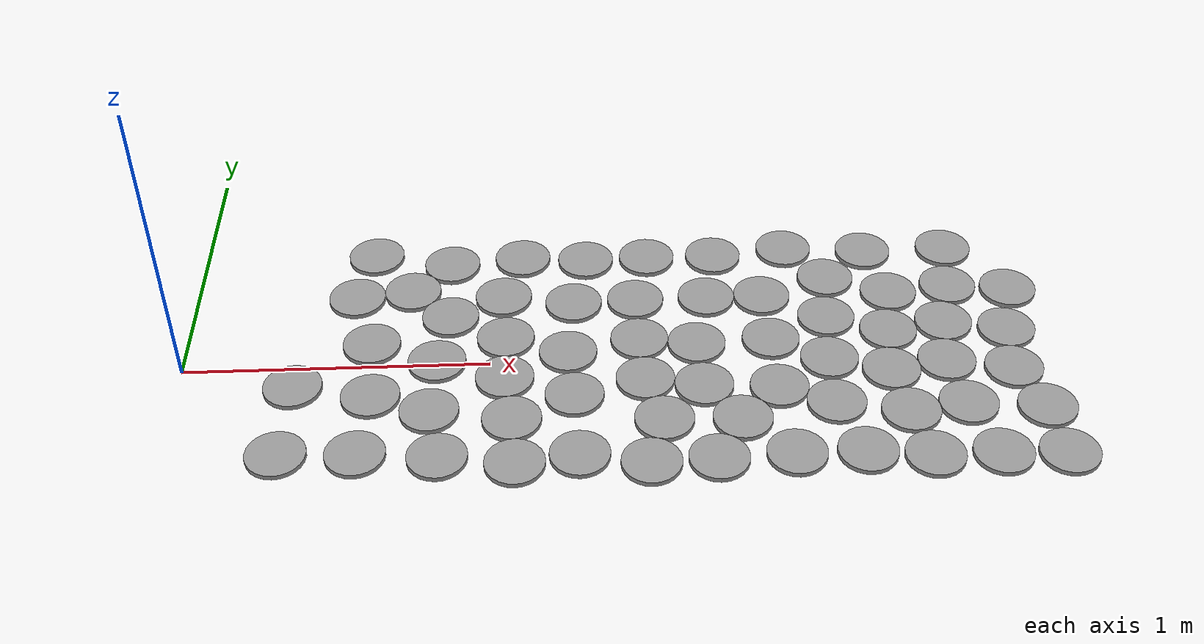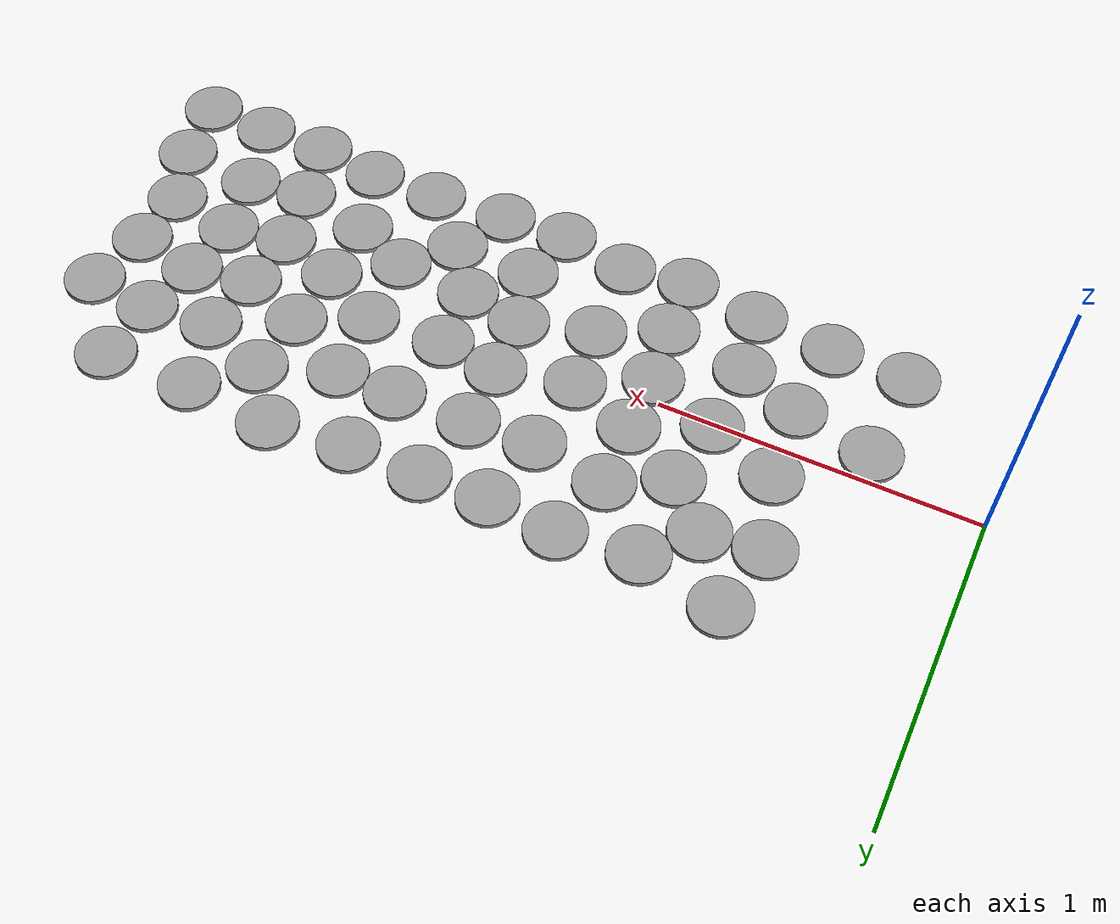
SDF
<sdf version="1.6">
 <world name="default">
  <model name="unit_cylinder_clone_clone_123">
   <pose>0.369188 -0.09185 0.008108 0 -0 0</pose>
   <link name="link">
    <inertial>
     <mass>1</mass>
     <inertia><ixx>0.145833</ixx><ixy>0</ixy><ixz>0</ixz><iyy>0.145833</iyy><iyz>0</iyz><izz>0.125</izz></inertia>
    </inertial>
    <collision name="collision">
     <geometry><cylinder><radius>0.0950718</radius><length>0.0162339</length></cylinder></geometry>
    </collision>
    <visual name="visual">
     <geometry><cylinder><radius>0.0950718</radius><length>0.0162339</length></cylinder></geometry>
     <material>
      <script><name>Gazebo/Grey</name><uri>file://media/materials/scripts/gazebo.material</uri></script>
     </material>
    </visual>
   </link>
  </model>
  <model name="unit_cylinder_clone_clone_124">
   <pose>0.351408 -0.391127 0.008111 0 -0 0</pose>
   <link name="link">
    <inertial>
     <mass>1</mass>
     <inertia><ixx>0.145833</ixx><ixy>0</ixy><ixz>0</ixz><iyy>0.145833</iyy><iyz>0</iyz><izz>0.125</izz></inertia>
    </inertial>
    <collision name="collision">
     <geometry><cylinder><radius>0.0950718</radius><length>0.0162339</length></cylinder></geometry>
    </collision>
    <visual name="visual">
     <geometry><cylinder><radius>0.0950718</radius><length>0.0162339</length></cylinder></geometry>
     <material>
      <script><name>Gazebo/Grey</name><uri>file://media/materials/scripts/gazebo.material</uri></script>
     </material>
    </visual>
   </link>
  </model>
  <model name="unit_cylinder_clone_clone_125">
   <pose>0.594038 -0.397589 0.008111 0 -0 0</pose>
   <link name="link">
    <inertial>
     <mass>1</mass>
     <inertia><ixx>0.145833</ixx><ixy>0</ixy><ixz>0</ixz><iyy>0.145833</iyy><iyz>0</iyz><izz>0.125</izz></inertia>
    </inertial>
    <collision name="collision">
     <geometry><cylinder><radius>0.0950718</radius><length>0.0162339</length></cylinder></geometry>
    </collision>
    <visual name="visual">
     <geometry><cylinder><radius>0.0950718</radius><length>0.0162339</length></cylinder></geometry>
     <material>
      <script><name>Gazebo/Grey</name><uri>file://media/materials/scripts/gazebo.material</uri></script>
     </material>
    </visual>
   </link>
  </model>
  <model name="unit_cylinder_clone_clone_126">
   <pose>0.621231 -0.144033 0.008107 0 -0 0</pose>
   <link name="link">
    <inertial>
     <mass>1</mass>
     <inertia><ixx>0.145833</ixx><ixy>0</ixy><ixz>0</ixz><iyy>0.145833</iyy><iyz>0</iyz><izz>0.125</izz></inertia>
    </inertial>
    <collision name="collision">
     <geometry><cylinder><radius>0.0950718</radius><length>0.0162339</length></cylinder></geometry>
    </collision>
    <visual name="visual">
     <geometry><cylinder><radius>0.0950718</radius><length>0.0162339</length></cylinder></geometry>
     <material>
      <script><name>Gazebo/Grey</name><uri>file://media/materials/scripts/gazebo.material</uri></script>
     </material>
    </visual>
   </link>
  </model>
  <model name="unit_cylinder_clone_clone_127">
   <pose>0.607874 0.101254 0.008111 0 -0 0</pose>
   <link name="link">
    <inertial>
     <mass>1</mass>
     <inertia><ixx>0.145833</ixx><ixy>0</ixy><ixz>0</ixz><iyy>0.145833</iyy><iyz>0</iyz><izz>0.125</izz></inertia>
    </inertial>
    <collision name="collision">
     <geometry><cylinder><radius>0.0950718</radius><length>0.0162339</length></cylinder></geometry>
    </collision>
    <visual name="visual">
     <geometry><cylinder><radius>0.0950718</radius><length>0.0162339</length></cylinder></geometry>
     <material>
      <script><name>Gazebo/Grey</name><uri>file://media/materials/scripts/gazebo.material</uri></script>
     </material>
    </visual>
   </link>
  </model>
  <model name="unit_cylinder_clone_clone_128">
   <pose>0.540658 0.337848 0.008116 0 -0 0.003136</pose>
   <link name="link">
    <inertial>
     <mass>1</mass>
     <inertia><ixx>0.145833</ixx><ixy>0</ixy><ixz>0</ixz><iyy>0.145833</iyy><iyz>0</iyz><izz>0.125</izz></inertia>
    </inertial>
    <collision name="collision">
     <geometry><cylinder><radius>0.0950718</radius><length>0.0162339</length></cylinder></geometry>
    </collision>
    <visual name="visual">
     <geometry><cylinder><radius>0.0950718</radius><length>0.0162339</length></cylinder></geometry>
     <material>
      <script><name>Gazebo/Grey</name><uri>file://media/materials/scripts/gazebo.material</uri></script>
     </material>
    </visual>
   </link>
  </model>
  <model name="unit_cylinder_clone_clone_129">
   <pose>0.590064 0.560114 0.008115 0 -0 0</pose>
   <link name="link">
    <inertial>
     <mass>1</mass>
     <inertia><ixx>0.145833</ixx><ixy>0</ixy><ixz>0</ixz><iyy>0.145833</iyy><iyz>0</iyz><izz>0.125</izz></inertia>
    </inertial>
    <collision name="collision">
     <geometry><cylinder><radius>0.0950718</radius><length>0.0162339</length></cylinder></geometry>
    </collision>
    <visual name="visual">
     <geometry><cylinder><radius>0.0950718</radius><length>0.0162339</length></cylinder></geometry>
     <material>
      <script><name>Gazebo/Grey</name><uri>file://media/materials/scripts/gazebo.material</uri></script>
     </material>
    </visual>
   </link>
  </model>
  <model name="unit_cylinder_clone_clone_130">
   <pose>0.857851 0.502889 0.008112 -5e-06 0 -0.000519</pose>
   <link name="link">
    <inertial>
     <mass>1</mass>
     <inertia><ixx>0.145833</ixx><ixy>0</ixy><ixz>0</ixz><iyy>0.145833</iyy><iyz>0</iyz><izz>0.125</izz></inertia>
    </inertial>
    <collision name="collision">
     <geometry><cylinder><radius>0.0950718</radius><length>0.0162339</length></cylinder></geometry>
    </collision>
    <visual name="visual">
     <geometry><cylinder><radius>0.0950718</radius><length>0.0162339</length></cylinder></geometry>
     <material>
      <script><name>Gazebo/Grey</name><uri>file://media/materials/scripts/gazebo.material</uri></script>
     </material>
    </visual>
   </link>
  </model>
  <model name="unit_cylinder_clone_clone_131">
   <pose>1.10308 0.528807 0.008108 0 -0 0</pose>
   <link name="link">
    <inertial>
     <mass>1</mass>
     <inertia><ixx>0.145833</ixx><ixy>0</ixy><ixz>0</ixz><iyy>0.145833</iyy><iyz>0</iyz><izz>0.125</izz></inertia>
    </inertial>
    <collision name="collision">
     <geometry><cylinder><radius>0.0950718</radius><length>0.0162339</length></cylinder></geometry>
    </collision>
    <visual name="visual">
     <geometry><cylinder><radius>0.0950718</radius><length>0.0162339</length></cylinder></geometry>
     <material>
      <script><name>Gazebo/Grey</name><uri>file://media/materials/scripts/gazebo.material</uri></script>
     </material>
    </visual>
   </link>
  </model>
  <model name="unit_cylinder_clone_clone_132">
   <pose>1.32275 0.511495 0.008108 0 -0 0</pose>
   <link name="link">
    <inertial>
     <mass>1</mass>
     <inertia><ixx>0.145833</ixx><ixy>0</ixy><ixz>0</ixz><iyy>0.145833</iyy><iyz>0</iyz><izz>0.125</izz></inertia>
    </inertial>
    <collision name="collision">
     <geometry><cylinder><radius>0.0950718</radius><length>0.0162339</length></cylinder></geometry>
    </collision>
    <visual name="visual">
     <geometry><cylinder><radius>0.0950718</radius><length>0.0162339</length></cylinder></geometry>
     <material>
      <script><name>Gazebo/Grey</name><uri>file://media/materials/scripts/gazebo.material</uri></script>
     </material>
    </visual>
   </link>
  </model>
  <model name="unit_cylinder_clone_clone_133">
   <pose>1.53605 0.518092 0.008108 0 -0 0</pose>
   <link name="link">
    <inertial>
     <mass>1</mass>
     <inertia><ixx>0.145833</ixx><ixy>0</ixy><ixz>0</ixz><iyy>0.145833</iyy><iyz>0</iyz><izz>0.125</izz></inertia>
    </inertial>
    <collision name="collision">
     <geometry><cylinder><radius>0.0950718</radius><length>0.0162339</length></cylinder></geometry>
    </collision>
    <visual name="visual">
     <geometry><cylinder><radius>0.0950718</radius><length>0.0162339</length></cylinder></geometry>
     <material>
      <script><name>Gazebo/Grey</name><uri>file://media/materials/scripts/gazebo.material</uri></script>
     </material>
    </visual>
   </link>
  </model>
  <model name="unit_cylinder_clone_clone_134">
   <pose>1.76945 0.517124 0.008111 0 -0 0</pose>
   <link name="link">
    <inertial>
     <mass>1</mass>
     <inertia><ixx>0.145833</ixx><ixy>0</ixy><ixz>0</ixz><iyy>0.145833</iyy><iyz>0</iyz><izz>0.125</izz></inertia>
    </inertial>
    <collision name="collision">
     <geometry><cylinder><radius>0.0950718</radius><length>0.0162339</length></cylinder></geometry>
    </collision>
    <visual name="visual">
     <geometry><cylinder><radius>0.0950718</radius><length>0.0162339</length></cylinder></geometry>
     <material>
      <script><name>Gazebo/Grey</name><uri>file://media/materials/scripts/gazebo.material</uri></script>
     </material>
    </visual>
   </link>
  </model>
  <model name="unit_cylinder_clone_clone_135">
   <pose>2.02142 0.54671 0.008108 0 -0 0</pose>
   <link name="link">
    <inertial>
     <mass>1</mass>
     <inertia><ixx>0.145833</ixx><ixy>0</ixy><ixz>0</ixz><iyy>0.145833</iyy><iyz>0</iyz><izz>0.125</izz></inertia>
    </inertial>
    <collision name="collision">
     <geometry><cylinder><radius>0.0950718</radius><length>0.0162339</length></cylinder></geometry>
    </collision>
    <visual name="visual">
     <geometry><cylinder><radius>0.0950718</radius><length>0.0162339</length></cylinder></geometry>
     <material>
      <script><name>Gazebo/Grey</name><uri>file://media/materials/scripts/gazebo.material</uri></script>
     </material>
    </visual>
   </link>
  </model>
  <model name="unit_cylinder_clone_clone_136">
   <pose>2.30067 0.523798 0.008111 0 -0 0</pose>
   <link name="link">
    <inertial>
     <mass>1</mass>
     <inertia><ixx>0.145833</ixx><ixy>0</ixy><ixz>0</ixz><iyy>0.145833</iyy><iyz>0</iyz><izz>0.125</izz></inertia>
    </inertial>
    <collision name="collision">
     <geometry><cylinder><radius>0.0950718</radius><length>0.0162339</length></cylinder></geometry>
    </collision>
    <visual name="visual">
     <geometry><cylinder><radius>0.0950718</radius><length>0.0162339</length></cylinder></geometry>
     <material>
      <script><name>Gazebo/Grey</name><uri>file://media/materials/scripts/gazebo.material</uri></script>
     </material>
    </visual>
   </link>
  </model>
  <model name="unit_cylinder_clone_clone_137">
   <pose>2.5873 0.528408 0.008108 0 -0 0</pose>
   <link name="link">
    <inertial>
     <mass>1</mass>
     <inertia><ixx>0.145833</ixx><ixy>0</ixy><ixz>0</ixz><iyy>0.145833</iyy><iyz>0</iyz><izz>0.125</izz></inertia>
    </inertial>
    <collision name="collision">
     <geometry><cylinder><radius>0.0950718</radius><length>0.0162339</length></cylinder></geometry>
    </collision>
    <visual name="visual">
     <geometry><cylinder><radius>0.0950718</radius><length>0.0162339</length></cylinder></geometry>
     <material>
      <script><name>Gazebo/Grey</name><uri>file://media/materials/scripts/gazebo.material</uri></script>
     </material>
    </visual>
   </link>
  </model>
  <model name="unit_cylinder_clone_clone_161">
   <pose>2.78554 -0.475572 0.008111 0 -0 0</pose>
   <link name="link">
    <inertial>
     <mass>1</mass>
     <inertia><ixx>0.145833</ixx><ixy>0</ixy><ixz>0</ixz><iyy>0.145833</iyy><iyz>0</iyz><izz>0.125</izz></inertia>
    </inertial>
    <collision name="collision">
     <geometry><cylinder><radius>0.0950718</radius><length>0.0162339</length></cylinder></geometry>
    </collision>
    <visual name="visual">
     <geometry><cylinder><radius>0.0950718</radius><length>0.0162339</length></cylinder></geometry>
     <material>
      <script><name>Gazebo/Grey</name><uri>file://media/materials/scripts/gazebo.material</uri></script>
     </material>
    </visual>
   </link>
  </model>
  <model name="unit_cylinder_clone_clone_162">
   <pose>2.58264 -0.467705 0.008108 0 -0 0</pose>
   <link name="link">
    <inertial>
     <mass>1</mass>
     <inertia><ixx>0.145833</ixx><ixy>0</ixy><ixz>0</ixz><iyy>0.145833</iyy><iyz>0</iyz><izz>0.125</izz></inertia>
    </inertial>
    <collision name="collision">
     <geometry><cylinder><radius>0.0950718</radius><length>0.0162339</length></cylinder></geometry>
    </collision>
    <visual name="visual">
     <geometry><cylinder><radius>0.0950718</radius><length>0.0162339</length></cylinder></geometry>
     <material>
      <script><name>Gazebo/Grey</name><uri>file://media/materials/scripts/gazebo.material</uri></script>
     </material>
    </visual>
   </link>
  </model>
  <model name="unit_cylinder_clone_clone_163">
   <pose>2.37176 -0.46862 0.008111 0 -0 0</pose>
   <link name="link">
    <inertial>
     <mass>1</mass>
     <inertia><ixx>0.145833</ixx><ixy>0</ixy><ixz>0</ixz><iyy>0.145833</iyy><iyz>0</iyz><izz>0.125</izz></inertia>
    </inertial>
    <collision name="collision">
     <geometry><cylinder><radius>0.0950718</radius><length>0.0162339</length></cylinder></geometry>
    </collision>
    <visual name="visual">
     <geometry><cylinder><radius>0.0950718</radius><length>0.0162339</length></cylinder></geometry>
     <material>
      <script><name>Gazebo/Grey</name><uri>file://media/materials/scripts/gazebo.material</uri></script>
     </material>
    </visual>
   </link>
  </model>
  <model name="unit_cylinder_clone_clone_164">
   <pose>2.16826 -0.44393 0.008108 0 -0 0</pose>
   <link name="link">
    <inertial>
     <mass>1</mass>
     <inertia><ixx>0.145833</ixx><ixy>0</ixy><ixz>0</ixz><iyy>0.145833</iyy><iyz>0</iyz><izz>0.125</izz></inertia>
    </inertial>
    <collision name="collision">
     <geometry><cylinder><radius>0.0950718</radius><length>0.0162339</length></cylinder></geometry>
    </collision>
    <visual name="visual">
     <geometry><cylinder><radius>0.0950718</radius><length>0.0162339</length></cylinder></geometry>
     <material>
      <script><name>Gazebo/Grey</name><uri>file://media/materials/scripts/gazebo.material</uri></script>
     </material>
    </visual>
   </link>
  </model>
  <model name="unit_cylinder_clone_clone_165">
   <pose>1.94921 -0.445227 0.008108 0 -0 0</pose>
   <link name="link">
    <inertial>
     <mass>1</mass>
     <inertia><ixx>0.145833</ixx><ixy>0</ixy><ixz>0</ixz><iyy>0.145833</iyy><iyz>0</iyz><izz>0.125</izz></inertia>
    </inertial>
    <collision name="collision">
     <geometry><cylinder><radius>0.0950718</radius><length>0.0162339</length></cylinder></geometry>
    </collision>
    <visual name="visual">
     <geometry><cylinder><radius>0.0950718</radius><length>0.0162339</length></cylinder></geometry>
     <material>
      <script><name>Gazebo/Grey</name><uri>file://media/materials/scripts/gazebo.material</uri></script>
     </material>
    </visual>
   </link>
  </model>
  <model name="unit_cylinder_clone_clone_166">
   <pose>1.70917 -0.456481 0.008116 0 0 -0.001132</pose>
   <link name="link">
    <inertial>
     <mass>1</mass>
     <inertia><ixx>0.145833</ixx><ixy>0</ixy><ixz>0</ixz><iyy>0.145833</iyy><iyz>0</iyz><izz>0.125</izz></inertia>
    </inertial>
    <collision name="collision">
     <geometry><cylinder><radius>0.0950718</radius><length>0.0162339</length></cylinder></geometry>
    </collision>
    <visual name="visual">
     <geometry><cylinder><radius>0.0950718</radius><length>0.0162339</length></cylinder></geometry>
     <material>
      <script><name>Gazebo/Grey</name><uri>file://media/materials/scripts/gazebo.material</uri></script>
     </material>
    </visual>
   </link>
  </model>
  <model name="unit_cylinder_clone_clone_167">
   <pose>1.50136 -0.465139 0.008107 0 0 -0.001371</pose>
   <link name="link">
    <inertial>
     <mass>1</mass>
     <inertia><ixx>0.145833</ixx><ixy>0</ixy><ixz>0</ixz><iyy>0.145833</iyy><iyz>0</iyz><izz>0.125</izz></inertia>
    </inertial>
    <collision name="collision">
     <geometry><cylinder><radius>0.0950718</radius><length>0.0162339</length></cylinder></geometry>
    </collision>
    <visual name="visual">
     <geometry><cylinder><radius>0.0950718</radius><length>0.0162339</length></cylinder></geometry>
     <material>
      <script><name>Gazebo/Grey</name><uri>file://media/materials/scripts/gazebo.material</uri></script>
     </material>
    </visual>
   </link>
  </model>
  <model name="unit_cylinder_clone_clone_168">
   <pose>1.28313 -0.424276 0.008111 0 -0 0</pose>
   <link name="link">
    <inertial>
     <mass>1</mass>
     <inertia><ixx>0.145833</ixx><ixy>0</ixy><ixz>0</ixz><iyy>0.145833</iyy><iyz>0</iyz><izz>0.125</izz></inertia>
    </inertial>
    <collision name="collision">
     <geometry><cylinder><radius>0.0950718</radius><length>0.0162339</length></cylinder></geometry>
    </collision>
    <visual name="visual">
     <geometry><cylinder><radius>0.0950718</radius><length>0.0162339</length></cylinder></geometry>
     <material>
      <script><name>Gazebo/Grey</name><uri>file://media/materials/scripts/gazebo.material</uri></script>
     </material>
    </visual>
   </link>
  </model>
  <model name="unit_cylinder_clone_clone_169">
   <pose>1.08345 -0.453173 0.008117 0 0 -0.000221</pose>
   <link name="link">
    <inertial>
     <mass>1</mass>
     <inertia><ixx>0.145833</ixx><ixy>0</ixy><ixz>0</ixz><iyy>0.145833</iyy><iyz>0</iyz><izz>0.125</izz></inertia>
    </inertial>
    <collision name="collision">
     <geometry><cylinder><radius>0.0950718</radius><length>0.0162339</length></cylinder></geometry>
    </collision>
    <visual name="visual">
     <geometry><cylinder><radius>0.0950718</radius><length>0.0162339</length></cylinder></geometry>
     <material>
      <script><name>Gazebo/Grey</name><uri>file://media/materials/scripts/gazebo.material</uri></script>
     </material>
    </visual>
   </link>
  </model>
  <model name="unit_cylinder_clone_clone_170">
   <pose>0.845585 -0.418486 0.008116 0 -0 0</pose>
   <link name="link">
    <inertial>
     <mass>1</mass>
     <inertia><ixx>0.145833</ixx><ixy>0</ixy><ixz>0</ixz><iyy>0.145833</iyy><iyz>0</iyz><izz>0.125</izz></inertia>
    </inertial>
    <collision name="collision">
     <geometry><cylinder><radius>0.0950718</radius><length>0.0162339</length></cylinder></geometry>
    </collision>
    <visual name="visual">
     <geometry><cylinder><radius>0.0950718</radius><length>0.0162339</length></cylinder></geometry>
     <material>
      <script><name>Gazebo/Grey</name><uri>file://media/materials/scripts/gazebo.material</uri></script>
     </material>
    </visual>
   </link>
  </model>
  <model name="unit_cylinder_clone_clone_171">
   <pose>0.81133 -0.218066 0.008116 0 -0 0</pose>
   <link name="link">
    <inertial>
     <mass>1</mass>
     <inertia><ixx>0.145833</ixx><ixy>0</ixy><ixz>0</ixz><iyy>0.145833</iyy><iyz>0</iyz><izz>0.125</izz></inertia>
    </inertial>
    <collision name="collision">
     <geometry><cylinder><radius>0.0950718</radius><length>0.0162339</length></cylinder></geometry>
    </collision>
    <visual name="visual">
     <geometry><cylinder><radius>0.0950718</radius><length>0.0162339</length></cylinder></geometry>
     <material>
      <script><name>Gazebo/Grey</name><uri>file://media/materials/scripts/gazebo.material</uri></script>
     </material>
    </visual>
   </link>
  </model>
  <model name="unit_cylinder_clone_clone_172">
   <pose>0.826242 0.00979 0.008116 0 -0 0</pose>
   <link name="link">
    <inertial>
     <mass>1</mass>
     <inertia><ixx>0.145833</ixx><ixy>0</ixy><ixz>0</ixz><iyy>0.145833</iyy><iyz>0</iyz><izz>0.125</izz></inertia>
    </inertial>
    <collision name="collision">
     <geometry><cylinder><radius>0.0950718</radius><length>0.0162339</length></cylinder></geometry>
    </collision>
    <visual name="visual">
     <geometry><cylinder><radius>0.0950718</radius><length>0.0162339</length></cylinder></geometry>
     <material>
      <script><name>Gazebo/Grey</name><uri>file://media/materials/scripts/gazebo.material</uri></script>
     </material>
    </visual>
   </link>
  </model>
  <model name="unit_cylinder_clone_clone_173">
   <pose>0.861834 0.226743 0.008117 0 0 -0.004425</pose>
   <link name="link">
    <inertial>
     <mass>1</mass>
     <inertia><ixx>0.145833</ixx><ixy>0</ixy><ixz>0</ixz><iyy>0.145833</iyy><iyz>0</iyz><izz>0.125</izz></inertia>
    </inertial>
    <collision name="collision">
     <geometry><cylinder><radius>0.0950718</radius><length>0.0162339</length></cylinder></geometry>
    </collision>
    <visual name="visual">
     <geometry><cylinder><radius>0.0950718</radius><length>0.0162339</length></cylinder></geometry>
     <material>
      <script><name>Gazebo/Grey</name><uri>file://media/materials/scripts/gazebo.material</uri></script>
     </material>
    </visual>
   </link>
  </model>
  <model name="unit_cylinder_clone_clone_174">
   <pose>1.03906 0.323316 0.008116 0 -0 0</pose>
   <link name="link">
    <inertial>
     <mass>1</mass>
     <inertia><ixx>0.145833</ixx><ixy>0</ixy><ixz>0</ixz><iyy>0.145833</iyy><iyz>0</iyz><izz>0.125</izz></inertia>
    </inertial>
    <collision name="collision">
     <geometry><cylinder><radius>0.0950718</radius><length>0.0162339</length></cylinder></geometry>
    </collision>
    <visual name="visual">
     <geometry><cylinder><radius>0.0950718</radius><length>0.0162339</length></cylinder></geometry>
     <material>
      <script><name>Gazebo/Grey</name><uri>file://media/materials/scripts/gazebo.material</uri></script>
     </material>
    </visual>
   </link>
  </model>
  <model name="unit_cylinder_clone_clone_175">
   <pose>1.04855 0.115366 0.008108 0 0 -9e-06</pose>
   <link name="link">
    <inertial>
     <mass>1</mass>
     <inertia><ixx>0.145833</ixx><ixy>0</ixy><ixz>0</ixz><iyy>0.145833</iyy><iyz>0</iyz><izz>0.125</izz></inertia>
    </inertial>
    <collision name="collision">
     <geometry><cylinder><radius>0.0950718</radius><length>0.0162339</length></cylinder></geometry>
    </collision>
    <visual name="visual">
     <geometry><cylinder><radius>0.0950718</radius><length>0.0162339</length></cylinder></geometry>
     <material>
      <script><name>Gazebo/Grey</name><uri>file://media/materials/scripts/gazebo.material</uri></script>
     </material>
    </visual>
   </link>
  </model>
  <model name="unit_cylinder_clone_clone_176">
   <pose>1.04769 -0.074795 0.008108 0 -0 0.000803</pose>
   <link name="link">
    <inertial>
     <mass>1</mass>
     <inertia><ixx>0.145833</ixx><ixy>0</ixy><ixz>0</ixz><iyy>0.145833</iyy><iyz>0</iyz><izz>0.125</izz></inertia>
    </inertial>
    <collision name="collision">
     <geometry><cylinder><radius>0.0950718</radius><length>0.0162339</length></cylinder></geometry>
    </collision>
    <visual name="visual">
     <geometry><cylinder><radius>0.0950718</radius><length>0.0162339</length></cylinder></geometry>
     <material>
      <script><name>Gazebo/Grey</name><uri>file://media/materials/scripts/gazebo.material</uri></script>
     </material>
    </visual>
   </link>
  </model>
  <model name="unit_cylinder_clone_clone_177">
   <pose>1.27129 -0.162874 0.008108 0 -0 0</pose>
   <link name="link">
    <inertial>
     <mass>1</mass>
     <inertia><ixx>0.145833</ixx><ixy>0</ixy><ixz>0</ixz><iyy>0.145833</iyy><iyz>0</iyz><izz>0.125</izz></inertia>
    </inertial>
    <collision name="collision">
     <geometry><cylinder><radius>0.0950718</radius><length>0.0162339</length></cylinder></geometry>
    </collision>
    <visual name="visual">
     <geometry><cylinder><radius>0.0950718</radius><length>0.0162339</length></cylinder></geometry>
     <material>
      <script><name>Gazebo/Grey</name><uri>file://media/materials/scripts/gazebo.material</uri></script>
     </material>
    </visual>
   </link>
  </model>
  <model name="unit_cylinder_clone_clone_178">
   <pose>1.25379 0.03839 0.008108 0 -0 0</pose>
   <link name="link">
    <inertial>
     <mass>1</mass>
     <inertia><ixx>0.145833</ixx><ixy>0</ixy><ixz>0</ixz><iyy>0.145833</iyy><iyz>0</iyz><izz>0.125</izz></inertia>
    </inertial>
    <collision name="collision">
     <geometry><cylinder><radius>0.0950718</radius><length>0.0162339</length></cylinder></geometry>
    </collision>
    <visual name="visual">
     <geometry><cylinder><radius>0.0950718</radius><length>0.0162339</length></cylinder></geometry>
     <material>
      <script><name>Gazebo/Grey</name><uri>file://media/materials/scripts/gazebo.material</uri></script>
     </material>
    </visual>
   </link>
  </model>
  <model name="unit_cylinder_clone_clone_179">
   <pose>1.27636 0.283558 0.008116 0 -0 0</pose>
   <link name="link">
    <inertial>
     <mass>1</mass>
     <inertia><ixx>0.145833</ixx><ixy>0</ixy><ixz>0</ixz><iyy>0.145833</iyy><iyz>0</iyz><izz>0.125</izz></inertia>
    </inertial>
    <collision name="collision">
     <geometry><cylinder><radius>0.0950718</radius><length>0.0162339</length></cylinder></geometry>
    </collision>
    <visual name="visual">
     <geometry><cylinder><radius>0.0950718</radius><length>0.0162339</length></cylinder></geometry>
     <material>
      <script><name>Gazebo/Grey</name><uri>file://media/materials/scripts/gazebo.material</uri></script>
     </material>
    </visual>
   </link>
  </model>
  <model name="unit_cylinder_clone_clone_180">
   <pose>1.48633 0.293061 0.008108 0 -0 0</pose>
   <link name="link">
    <inertial>
     <mass>1</mass>
     <inertia><ixx>0.145833</ixx><ixy>0</ixy><ixz>0</ixz><iyy>0.145833</iyy><iyz>0</iyz><izz>0.125</izz></inertia>
    </inertial>
    <collision name="collision">
     <geometry><cylinder><radius>0.0950718</radius><length>0.0162339</length></cylinder></geometry>
    </collision>
    <visual name="visual">
     <geometry><cylinder><radius>0.0950718</radius><length>0.0162339</length></cylinder></geometry>
     <material>
      <script><name>Gazebo/Grey</name><uri>file://media/materials/scripts/gazebo.material</uri></script>
     </material>
    </visual>
   </link>
  </model>
  <model name="unit_cylinder_clone_clone_181">
   <pose>1.49035 0.092091 0.008116 0 -0 1.4e-05</pose>
   <link name="link">
    <inertial>
     <mass>1</mass>
     <inertia><ixx>0.145833</ixx><ixy>0</ixy><ixz>0</ixz><iyy>0.145833</iyy><iyz>0</iyz><izz>0.125</izz></inertia>
    </inertial>
    <collision name="collision">
     <geometry><cylinder><radius>0.0950718</radius><length>0.0162339</length></cylinder></geometry>
    </collision>
    <visual name="visual">
     <geometry><cylinder><radius>0.0950718</radius><length>0.0162339</length></cylinder></geometry>
     <material>
      <script><name>Gazebo/Grey</name><uri>file://media/materials/scripts/gazebo.material</uri></script>
     </material>
    </visual>
   </link>
  </model>
  <model name="unit_cylinder_clone_clone_182">
   <pose>1.50081 -0.098441 0.008112 5e-06 -0 0.007148</pose>
   <link name="link">
    <inertial>
     <mass>1</mass>
     <inertia><ixx>0.145833</ixx><ixy>0</ixy><ixz>0</ixz><iyy>0.145833</iyy><iyz>0</iyz><izz>0.125</izz></inertia>
    </inertial>
    <collision name="collision">
     <geometry><cylinder><radius>0.0950718</radius><length>0.0162339</length></cylinder></geometry>
    </collision>
    <visual name="visual">
     <geometry><cylinder><radius>0.0950718</radius><length>0.0162339</length></cylinder></geometry>
     <material>
      <script><name>Gazebo/Grey</name><uri>file://media/materials/scripts/gazebo.material</uri></script>
     </material>
    </visual>
   </link>
  </model>
  <model name="unit_cylinder_clone_clone_183">
   <pose>1.68864 -0.132849 0.008108 0 -0 0.000348</pose>
   <link name="link">
    <inertial>
     <mass>1</mass>
     <inertia><ixx>0.145833</ixx><ixy>0</ixy><ixz>0</ixz><iyy>0.145833</iyy><iyz>0</iyz><izz>0.125</izz></inertia>
    </inertial>
    <collision name="collision">
     <geometry><cylinder><radius>0.0950718</radius><length>0.0162339</length></cylinder></geometry>
    </collision>
    <visual name="visual">
     <geometry><cylinder><radius>0.0950718</radius><length>0.0162339</length></cylinder></geometry>
     <material>
      <script><name>Gazebo/Grey</name><uri>file://media/materials/scripts/gazebo.material</uri></script>
     </material>
    </visual>
   </link>
  </model>
  <model name="unit_cylinder_clone_clone_184">
   <pose>1.67855 0.064912 0.008117 0 -0 2.7e-05</pose>
   <link name="link">
    <inertial>
     <mass>1</mass>
     <inertia><ixx>0.145833</ixx><ixy>0</ixy><ixz>0</ixz><iyy>0.145833</iyy><iyz>0</iyz><izz>0.125</izz></inertia>
    </inertial>
    <collision name="collision">
     <geometry><cylinder><radius>0.0950718</radius><length>0.0162339</length></cylinder></geometry>
    </collision>
    <visual name="visual">
     <geometry><cylinder><radius>0.0950718</radius><length>0.0162339</length></cylinder></geometry>
     <material>
      <script><name>Gazebo/Grey</name><uri>file://media/materials/scripts/gazebo.material</uri></script>
     </material>
    </visual>
   </link>
  </model>
  <model name="unit_cylinder_clone_clone_185">
   <pose>1.72801 0.296127 0.008116 0 -0 2.5e-05</pose>
   <link name="link">
    <inertial>
     <mass>1</mass>
     <inertia><ixx>0.145833</ixx><ixy>0</ixy><ixz>0</ixz><iyy>0.145833</iyy><iyz>0</iyz><izz>0.125</izz></inertia>
    </inertial>
    <collision name="collision">
     <geometry><cylinder><radius>0.0950718</radius><length>0.0162339</length></cylinder></geometry>
    </collision>
    <visual name="visual">
     <geometry><cylinder><radius>0.0950718</radius><length>0.0162339</length></cylinder></geometry>
     <material>
      <script><name>Gazebo/Grey</name><uri>file://media/materials/scripts/gazebo.material</uri></script>
     </material>
    </visual>
   </link>
  </model>
  <model name="unit_cylinder_clone_clone_186">
   <pose>1.91816 0.295163 0.008108 0 -0 3.7e-05</pose>
   <link name="link">
    <inertial>
     <mass>1</mass>
     <inertia><ixx>0.145833</ixx><ixy>0</ixy><ixz>0</ixz><iyy>0.145833</iyy><iyz>0</iyz><izz>0.125</izz></inertia>
    </inertial>
    <collision name="collision">
     <geometry><cylinder><radius>0.0950718</radius><length>0.0162339</length></cylinder></geometry>
    </collision>
    <visual name="visual">
     <geometry><cylinder><radius>0.0950718</radius><length>0.0162339</length></cylinder></geometry>
     <material>
      <script><name>Gazebo/Grey</name><uri>file://media/materials/scripts/gazebo.material</uri></script>
     </material>
    </visual>
   </link>
  </model>
  <model name="unit_cylinder_clone_clone_187">
   <pose>1.9256 0.077038 0.008116 0 -0 0</pose>
   <link name="link">
    <inertial>
     <mass>1</mass>
     <inertia><ixx>0.145833</ixx><ixy>0</ixy><ixz>0</ixz><iyy>0.145833</iyy><iyz>0</iyz><izz>0.125</izz></inertia>
    </inertial>
    <collision name="collision">
     <geometry><cylinder><radius>0.0950718</radius><length>0.0162339</length></cylinder></geometry>
    </collision>
    <visual name="visual">
     <geometry><cylinder><radius>0.0950718</radius><length>0.0162339</length></cylinder></geometry>
     <material>
      <script><name>Gazebo/Grey</name><uri>file://media/materials/scripts/gazebo.material</uri></script>
     </material>
    </visual>
   </link>
  </model>
  <model name="unit_cylinder_clone_clone_188">
   <pose>1.92869 -0.150043 0.008107 0 -0 0.001587</pose>
   <link name="link">
    <inertial>
     <mass>1</mass>
     <inertia><ixx>0.145833</ixx><ixy>0</ixy><ixz>0</ixz><iyy>0.145833</iyy><iyz>0</iyz><izz>0.125</izz></inertia>
    </inertial>
    <collision name="collision">
     <geometry><cylinder><radius>0.0950718</radius><length>0.0162339</length></cylinder></geometry>
    </collision>
    <visual name="visual">
     <geometry><cylinder><radius>0.0950718</radius><length>0.0162339</length></cylinder></geometry>
     <material>
      <script><name>Gazebo/Grey</name><uri>file://media/materials/scripts/gazebo.material</uri></script>
     </material>
    </visual>
   </link>
  </model>
  <model name="unit_cylinder_clone_clone_189">
   <pose>2.10217 -0.227905 0.008115 0 0 -0.000166</pose>
   <link name="link">
    <inertial>
     <mass>1</mass>
     <inertia><ixx>0.145833</ixx><ixy>0</ixy><ixz>0</ixz><iyy>0.145833</iyy><iyz>0</iyz><izz>0.125</izz></inertia>
    </inertial>
    <collision name="collision">
     <geometry><cylinder><radius>0.0950718</radius><length>0.0162339</length></cylinder></geometry>
    </collision>
    <visual name="visual">
     <geometry><cylinder><radius>0.0950718</radius><length>0.0162339</length></cylinder></geometry>
     <material>
      <script><name>Gazebo/Grey</name><uri>file://media/materials/scripts/gazebo.material</uri></script>
     </material>
    </visual>
   </link>
  </model>
  <model name="unit_cylinder_clone_clone_190">
   <pose>2.10716 -0.024344 0.008108 0 -0 0</pose>
   <link name="link">
    <inertial>
     <mass>1</mass>
     <inertia><ixx>0.145833</ixx><ixy>0</ixy><ixz>0</ixz><iyy>0.145833</iyy><iyz>0</iyz><izz>0.125</izz></inertia>
    </inertial>
    <collision name="collision">
     <geometry><cylinder><radius>0.0950718</radius><length>0.0162339</length></cylinder></geometry>
    </collision>
    <visual name="visual">
     <geometry><cylinder><radius>0.0950718</radius><length>0.0162339</length></cylinder></geometry>
     <material>
      <script><name>Gazebo/Grey</name><uri>file://media/materials/scripts/gazebo.material</uri></script>
     </material>
    </visual>
   </link>
  </model>
  <model name="unit_cylinder_clone_clone_191">
   <pose>2.12327 0.178633 0.008108 0 -0 0</pose>
   <link name="link">
    <inertial>
     <mass>1</mass>
     <inertia><ixx>0.145833</ixx><ixy>0</ixy><ixz>0</ixz><iyy>0.145833</iyy><iyz>0</iyz><izz>0.125</izz></inertia>
    </inertial>
    <collision name="collision">
     <geometry><cylinder><radius>0.0950718</radius><length>0.0162339</length></cylinder></geometry>
    </collision>
    <visual name="visual">
     <geometry><cylinder><radius>0.0950718</radius><length>0.0162339</length></cylinder></geometry>
     <material>
      <script><name>Gazebo/Grey</name><uri>file://media/materials/scripts/gazebo.material</uri></script>
     </material>
    </visual>
   </link>
  </model>
  <model name="unit_cylinder_clone_clone_192">
   <pose>2.14781 0.382003 0.008108 0 -0 0</pose>
   <link name="link">
    <inertial>
     <mass>1</mass>
     <inertia><ixx>0.145833</ixx><ixy>0</ixy><ixz>0</ixz><iyy>0.145833</iyy><iyz>0</iyz><izz>0.125</izz></inertia>
    </inertial>
    <collision name="collision">
     <geometry><cylinder><radius>0.0950718</radius><length>0.0162339</length></cylinder></geometry>
    </collision>
    <visual name="visual">
     <geometry><cylinder><radius>0.0950718</radius><length>0.0162339</length></cylinder></geometry>
     <material>
      <script><name>Gazebo/Grey</name><uri>file://media/materials/scripts/gazebo.material</uri></script>
     </material>
    </visual>
   </link>
  </model>
  <model name="unit_cylinder_clone_clone_193">
   <pose>2.35396 0.298622 0.008116 0 -0 0</pose>
   <link name="link">
    <inertial>
     <mass>1</mass>
     <inertia><ixx>0.145833</ixx><ixy>0</ixy><ixz>0</ixz><iyy>0.145833</iyy><iyz>0</iyz><izz>0.125</izz></inertia>
    </inertial>
    <collision name="collision">
     <geometry><cylinder><radius>0.0950718</radius><length>0.0162339</length></cylinder></geometry>
    </collision>
    <visual name="visual">
     <geometry><cylinder><radius>0.0950718</radius><length>0.0162339</length></cylinder></geometry>
     <material>
      <script><name>Gazebo/Grey</name><uri>file://media/materials/scripts/gazebo.material</uri></script>
     </material>
    </visual>
   </link>
  </model>
  <model name="unit_cylinder_clone_clone_194">
   <pose>2.32202 0.104704 0.008108 0 0 -2e-05</pose>
   <link name="link">
    <inertial>
     <mass>1</mass>
     <inertia><ixx>0.145833</ixx><ixy>0</ixy><ixz>0</ixz><iyy>0.145833</iyy><iyz>0</iyz><izz>0.125</izz></inertia>
    </inertial>
    <collision name="collision">
     <geometry><cylinder><radius>0.0950718</radius><length>0.0162339</length></cylinder></geometry>
    </collision>
    <visual name="visual">
     <geometry><cylinder><radius>0.0950718</radius><length>0.0162339</length></cylinder></geometry>
     <material>
      <script><name>Gazebo/Grey</name><uri>file://media/materials/scripts/gazebo.material</uri></script>
     </material>
    </visual>
   </link>
  </model>
  <model name="unit_cylinder_clone_clone_195">
   <pose>2.30148 -0.08458 0.008112 -5e-06 -0 -2.9e-05</pose>
   <link name="link">
    <inertial>
     <mass>1</mass>
     <inertia><ixx>0.145833</ixx><ixy>0</ixy><ixz>0</ixz><iyy>0.145833</iyy><iyz>0</iyz><izz>0.125</izz></inertia>
    </inertial>
    <collision name="collision">
     <geometry><cylinder><radius>0.0950718</radius><length>0.0162339</length></cylinder></geometry>
    </collision>
    <visual name="visual">
     <geometry><cylinder><radius>0.0950718</radius><length>0.0162339</length></cylinder></geometry>
     <material>
      <script><name>Gazebo/Grey</name><uri>file://media/materials/scripts/gazebo.material</uri></script>
     </material>
    </visual>
   </link>
  </model>
  <model name="unit_cylinder_clone_clone_196">
   <pose>2.33157 -0.276144 0.008116 0 -0 1.3e-05</pose>
   <link name="link">
    <inertial>
     <mass>1</mass>
     <inertia><ixx>0.145833</ixx><ixy>0</ixy><ixz>0</ixz><iyy>0.145833</iyy><iyz>0</iyz><izz>0.125</izz></inertia>
    </inertial>
    <collision name="collision">
     <geometry><cylinder><radius>0.0950718</radius><length>0.0162339</length></cylinder></geometry>
    </collision>
    <visual name="visual">
     <geometry><cylinder><radius>0.0950718</radius><length>0.0162339</length></cylinder></geometry>
     <material>
      <script><name>Gazebo/Grey</name><uri>file://media/materials/scripts/gazebo.material</uri></script>
     </material>
    </visual>
   </link>
  </model>
  <model name="unit_cylinder_clone_clone_197">
   <pose>2.51988 -0.249745 0.008117 0 -0 1.3e-05</pose>
   <link name="link">
    <inertial>
     <mass>1</mass>
     <inertia><ixx>0.145833</ixx><ixy>0</ixy><ixz>0</ixz><iyy>0.145833</iyy><iyz>0</iyz><izz>0.125</izz></inertia>
    </inertial>
    <collision name="collision">
     <geometry><cylinder><radius>0.0950718</radius><length>0.0162339</length></cylinder></geometry>
    </collision>
    <visual name="visual">
     <geometry><cylinder><radius>0.0950718</radius><length>0.0162339</length></cylinder></geometry>
     <material>
      <script><name>Gazebo/Grey</name><uri>file://media/materials/scripts/gazebo.material</uri></script>
     </material>
    </visual>
   </link>
  </model>
  <model name="unit_cylinder_clone_clone_198">
   <pose>2.4885 -0.050258 0.008116 0 -0 1.9e-05</pose>
   <link name="link">
    <inertial>
     <mass>1</mass>
     <inertia><ixx>0.145833</ixx><ixy>0</ixy><ixz>0</ixz><iyy>0.145833</iyy><iyz>0</iyz><izz>0.125</izz></inertia>
    </inertial>
    <collision name="collision">
     <geometry><cylinder><radius>0.0950718</radius><length>0.0162339</length></cylinder></geometry>
    </collision>
    <visual name="visual">
     <geometry><cylinder><radius>0.0950718</radius><length>0.0162339</length></cylinder></geometry>
     <material>
      <script><name>Gazebo/Grey</name><uri>file://media/materials/scripts/gazebo.material</uri></script>
     </material>
    </visual>
   </link>
  </model>
  <model name="unit_cylinder_clone_clone_199">
   <pose>2.51328 0.138275 0.008114 0 -0 3.2e-05</pose>
   <link name="link">
    <inertial>
     <mass>1</mass>
     <inertia><ixx>0.145833</ixx><ixy>0</ixy><ixz>0</ixz><iyy>0.145833</iyy><iyz>0</iyz><izz>0.125</izz></inertia>
    </inertial>
    <collision name="collision">
     <geometry><cylinder><radius>0.0950718</radius><length>0.0162339</length></cylinder></geometry>
    </collision>
    <visual name="visual">
     <geometry><cylinder><radius>0.0950718</radius><length>0.0162339</length></cylinder></geometry>
     <material>
      <script><name>Gazebo/Grey</name><uri>file://media/materials/scripts/gazebo.material</uri></script>
     </material>
    </visual>
   </link>
  </model>
  <model name="unit_cylinder_clone_clone_200">
   <pose>2.56368 0.32497 0.008108 0 -0 0</pose>
   <link name="link">
    <inertial>
     <mass>1</mass>
     <inertia><ixx>0.145833</ixx><ixy>0</ixy><ixz>0</ixz><iyy>0.145833</iyy><iyz>0</iyz><izz>0.125</izz></inertia>
    </inertial>
    <collision name="collision">
     <geometry><cylinder><radius>0.0950718</radius><length>0.0162339</length></cylinder></geometry>
    </collision>
    <visual name="visual">
     <geometry><cylinder><radius>0.0950718</radius><length>0.0162339</length></cylinder></geometry>
     <material>
      <script><name>Gazebo/Grey</name><uri>file://media/materials/scripts/gazebo.material</uri></script>
     </material>
    </visual>
   </link>
  </model>
  <model name="unit_cylinder_clone_clone_201">
   <pose>2.76737 0.30045 0.008108 0 -0 0</pose>
   <link name="link">
    <inertial>
     <mass>1</mass>
     <inertia><ixx>0.145833</ixx><ixy>0</ixy><ixz>0</ixz><iyy>0.145833</iyy><iyz>0</iyz><izz>0.125</izz></inertia>
    </inertial>
    <collision name="collision">
     <geometry><cylinder><radius>0.0950718</radius><length>0.0162339</length></cylinder></geometry>
    </collision>
    <visual name="visual">
     <geometry><cylinder><radius>0.0950718</radius><length>0.0162339</length></cylinder></geometry>
     <material>
      <script><name>Gazebo/Grey</name><uri>file://media/materials/scripts/gazebo.material</uri></script>
     </material>
    </visual>
   </link>
  </model>
  <model name="unit_cylinder_clone_clone_202">
   <pose>2.71765 0.097346 0.008116 0 0 -3e-06</pose>
   <link name="link">
    <inertial>
     <mass>1</mass>
     <inertia><ixx>0.145833</ixx><ixy>0</ixy><ixz>0</ixz><iyy>0.145833</iyy><iyz>0</iyz><izz>0.125</izz></inertia>
    </inertial>
    <collision name="collision">
     <geometry><cylinder><radius>0.0950718</radius><length>0.0162339</length></cylinder></geometry>
    </collision>
    <visual name="visual">
     <geometry><cylinder><radius>0.0950718</radius><length>0.0162339</length></cylinder></geometry>
     <material>
      <script><name>Gazebo/Grey</name><uri>file://media/materials/scripts/gazebo.material</uri></script>
     </material>
    </visual>
   </link>
  </model>
  <model name="unit_cylinder_clone_clone_203">
   <pose>2.70045 -0.092018 0.00811 0 0 -3e-06</pose>
   <link name="link">
    <inertial>
     <mass>1</mass>
     <inertia><ixx>0.145833</ixx><ixy>0</ixy><ixz>0</ixz><iyy>0.145833</iyy><iyz>0</iyz><izz>0.125</izz></inertia>
    </inertial>
    <collision name="collision">
     <geometry><cylinder><radius>0.0950718</radius><length>0.0162339</length></cylinder></geometry>
    </collision>
    <visual name="visual">
     <geometry><cylinder><radius>0.0950718</radius><length>0.0162339</length></cylinder></geometry>
     <material>
      <script><name>Gazebo/Grey</name><uri>file://media/materials/scripts/gazebo.material</uri></script>
     </material>
    </visual>
   </link>
  </model>
  <model name="unit_cylinder_clone_clone_204">
   <pose>2.76651 -0.273248 0.008108 0 -0 3e-06</pose>
   <link name="link">
    <inertial>
     <mass>1</mass>
     <inertia><ixx>0.145833</ixx><ixy>0</ixy><ixz>0</ixz><iyy>0.145833</iyy><iyz>0</iyz><izz>0.125</izz></inertia>
    </inertial>
    <collision name="collision">
     <geometry><cylinder><radius>0.0950718</radius><length>0.0162339</length></cylinder></geometry>
    </collision>
    <visual name="visual">
     <geometry><cylinder><radius>0.0950718</radius><length>0.0162339</length></cylinder></geometry>
     <material>
      <script><name>Gazebo/Grey</name><uri>file://media/materials/scripts/gazebo.material</uri></script>
     </material>
    </visual>
   </link>
  </model>
  <model name="unit_cylinder_clone_clone_244">
   <pose>1.79803 -0.288378 0.008115 0 -0 0.000336</pose>
   <link name="link">
    <inertial>
     <mass>1</mass>
     <inertia><ixx>0.145833</ixx><ixy>0</ixy><ixz>0</ixz><iyy>0.145833</iyy><iyz>0</iyz><izz>0.125</izz></inertia>
    </inertial>
    <collision name="collision">
     <geometry><cylinder><radius>0.0950718</radius><length>0.0162339</length></cylinder></geometry>
    </collision>
    <visual name="visual">
     <geometry><cylinder><radius>0.0950718</radius><length>0.0162339</length></cylinder></geometry>
     <material>
      <script><name>Gazebo/Grey</name><uri>file://media/materials/scripts/gazebo.material</uri></script>
     </material>
    </visual>
   </link>
  </model>
  <model name="unit_cylinder_clone_clone_245">
   <pose>1.55149 -0.281715 0.008111 0 -0 0.005224</pose>
   <link name="link">
    <inertial>
     <mass>1</mass>
     <inertia><ixx>0.145833</ixx><ixy>0</ixy><ixz>0</ixz><iyy>0.145833</iyy><iyz>0</iyz><izz>0.125</izz></inertia>
    </inertial>
    <collision name="collision">
     <geometry><cylinder><radius>0.0950718</radius><length>0.0162339</length></cylinder></geometry>
    </collision>
    <visual name="visual">
     <geometry><cylinder><radius>0.0950718</radius><length>0.0162339</length></cylinder></geometry>
     <material>
      <script><name>Gazebo/Grey</name><uri>file://media/materials/scripts/gazebo.material</uri></script>
     </material>
    </visual>
   </link>
  </model>
  <model name="unit_cylinder_clone_clone_246">
   <pose>1.07213 -0.263364 0.00811 0 -0 0.00057</pose>
   <link name="link">
    <inertial>
     <mass>1</mass>
     <inertia><ixx>0.145833</ixx><ixy>0</ixy><ixz>0</ixz><iyy>0.145833</iyy><iyz>0</iyz><izz>0.125</izz></inertia>
    </inertial>
    <collision name="collision">
     <geometry><cylinder><radius>0.0950718</radius><length>0.0162339</length></cylinder></geometry>
    </collision>
    <visual name="visual">
     <geometry><cylinder><radius>0.0950718</radius><length>0.0162339</length></cylinder></geometry>
     <material>
      <script><name>Gazebo/Grey</name><uri>file://media/materials/scripts/gazebo.material</uri></script>
     </material>
    </visual>
   </link>
  </model>
  <model name="unit_cylinder_clone_clone_247">
   <pose>0.72914 0.362931 0.008108 0 0 -0.001807</pose>
   <link name="link">
    <inertial>
     <mass>1</mass>
     <inertia><ixx>0.145833</ixx><ixy>0</ixy><ixz>0</ixz><iyy>0.145833</iyy><iyz>0</iyz><izz>0.125</izz></inertia>
    </inertial>
    <collision name="collision">
     <geometry><cylinder><radius>0.0950718</radius><length>0.0162339</length></cylinder></geometry>
    </collision>
    <visual name="visual">
     <geometry><cylinder><radius>0.0950718</radius><length>0.0162339</length></cylinder></geometry>
     <material>
      <script><name>Gazebo/Grey</name><uri>file://media/materials/scripts/gazebo.material</uri></script>
     </material>
    </visual>
   </link>
  </model>
 </world>
</sdf>
